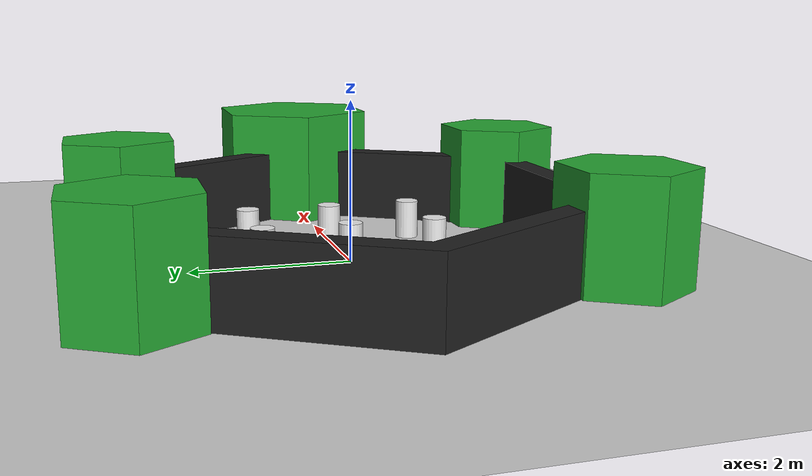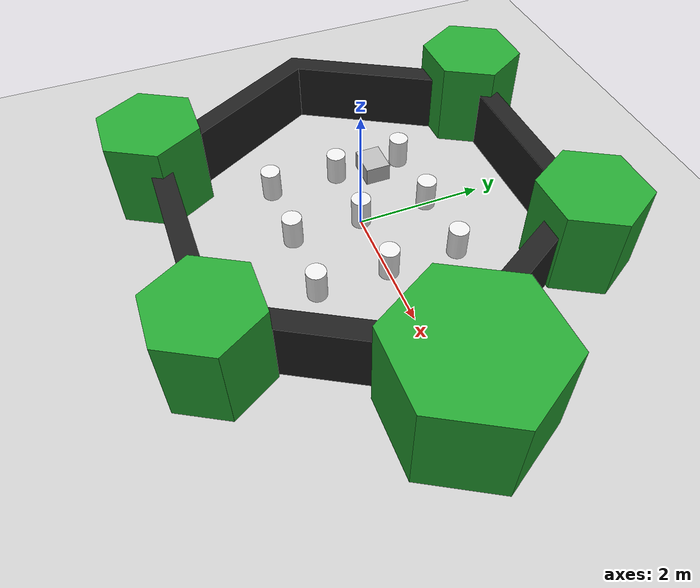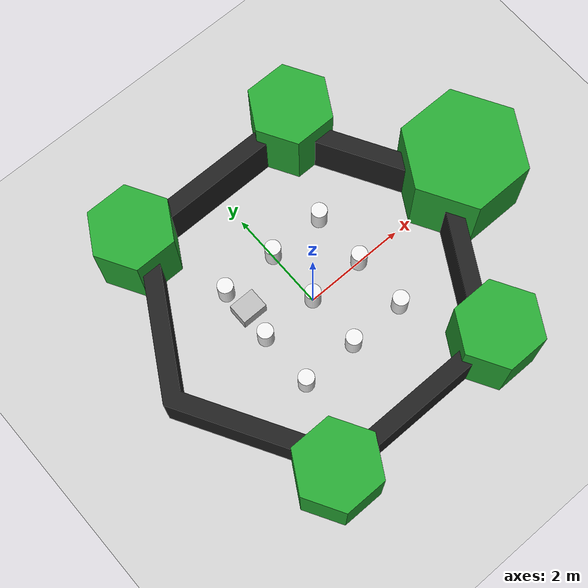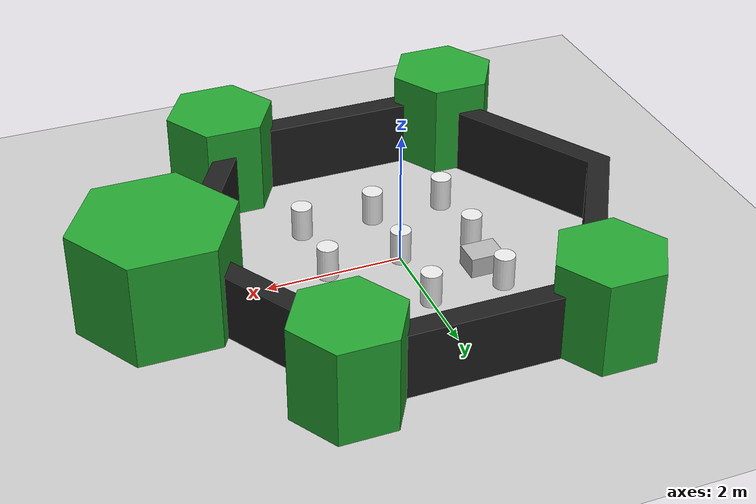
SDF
<sdf version="1.6">
 <world name="default">
  <include><uri>model://ground_plane</uri></include>
  <include><uri>model://sun</uri></include>
  <scene><shadows>false</shadows></scene>
  <physics type="ode">
   <real_time_update_rate>1000.0</real_time_update_rate>
   <max_step_size>0.001</max_step_size>
   <real_time_factor>1</real_time_factor>
   <ode>
    <solver>
     <type>quick</type>
     <iters>150</iters>
     <precon_iters>0</precon_iters>
     <sor>1.400000</sor>
     <use_dynamic_moi_rescaling>1</use_dynamic_moi_rescaling>
    </solver>
    <constraints>
     <cfm>0.00001</cfm>
     <erp>0.2</erp>
     <contact_max_correcting_vel>2000.000000</contact_max_correcting_vel>
     <contact_surface_layer>0.01000</contact_surface_layer>
    </constraints>
   </ode>
  </physics>
  <model name="turtlebot3_world">
   <static>1</static>
   <include><uri>model://turtlebot3_world</uri></include>
  </model>
  <model name="cardboard_box">
   <pose>-1.0 0.6 0.15 0 -0 0</pose>
   <link name="link">
    <inertial>
     <mass>20</mass>
     <inertia>
      <ixx>0.0416667</ixx>
      <ixy>0</ixy>
      <ixz>0</ixz>
      <iyy>0.0566667</iyy>
      <iyz>0</iyz>
      <izz>0.0683333</izz>
     </inertia>
    </inertial>
    <collision name="collision">
     <geometry><box><size>0.5 0.4 0.3</size></box></geometry>
     <surface>
      <friction><ode><mu>1</mu><mu2>1</mu2></ode></friction>
      <contact><ode><kp>1e+07</kp><kd>1</kd><min_depth>0.001</min_depth><max_vel>0.1</max_vel></ode></contact>
     </surface>
    </collision>
    <visual name="visual">
     <pose>0 0 -0.15 0 -0 0</pose>
     <geometry>
      <mesh><uri>model://cardboard_box/meshes/cardboard_box.dae</uri><scale>1.25932 1.00745 0.755591</scale></mesh>
     </geometry>
    </visual>
   </link>
  </model>
 </world>
</sdf>

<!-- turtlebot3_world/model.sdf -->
<sdf version='1.5'>
    <!-- Draw Circle -->
    <model name='ros_symbol'>
      <static>1</static>
      <link name='symbol'>
        <collision name='one_one'>
          <pose>-1.1 -1.1 0.25 0 0 0</pose>
          <geometry>
            <cylinder>
              <radius>0.15</radius>
              <length>0.5</length>
            </cylinder>
          </geometry>
          <max_contacts>10</max_contacts>
          <surface>
            <bounce/>
            <friction>
              <ode/>
            </friction>
            <contact>
              <ode/>
            </contact>
          </surface>
        </collision>

        <visual name='one_one'>
          <pose>-1.1 -1.1 0.25 0 0 0</pose>
          <geometry>
            <cylinder>
              <radius>0.15</radius>
              <length>0.5</length>
            </cylinder>
          </geometry>
          <material>
            <script>
              <uri>file://media/materials/scripts/gazebo.material</uri>
              <name>Gazebo/White</name>
            </script>
          </material>
        </visual>

        <collision name='one_two'>
          <pose>-1.1 0 0.25 0 0 0</pose>
          <geometry>
            <cylinder>
              <radius>0.15</radius>
              <length>0.5</length>
            </cylinder>
          </geometry>
          <max_contacts>10</max_contacts>
          <surface>
            <bounce/>
            <friction>
              <ode/>
            </friction>
            <contact>
              <ode/>
            </contact>
          </surface>
        </collision>

        <visual name='one_two'>
          <pose>-1.1 0 0.25 0 0 0</pose>
          <geometry>
            <cylinder>
              <radius>0.15</radius>
              <length>0.5</length>
            </cylinder>
          </geometry>
          <material>
            <script>
              <uri>file://media/materials/scripts/gazebo.material</uri>
              <name>Gazebo/White</name>
            </script>
          </material>
        </visual>

        <collision name='one_three'>
          <pose>-1.1 1.1 0.25 0 0 0</pose>
          <geometry>
            <cylinder>
              <radius>0.15</radius>
              <length>0.5</length>
            </cylinder>
          </geometry>
          <max_contacts>10</max_contacts>
          <surface>
            <bounce/>
            <friction>
              <ode/>
            </friction>
            <contact>
              <ode/>
            </contact>
          </surface>
        </collision>

        <visual name='one_three'>
          <pose>-1.1 1.1 0.25 0 0 0</pose>
          <geometry>
            <cylinder>
              <radius>0.15</radius>
              <length>0.5</length>
            </cylinder>
          </geometry>
          <material>
            <script>
              <uri>file://media/materials/scripts/gazebo.material</uri>
              <name>Gazebo/White</name>
            </script>
          </material>
        </visual>

        <collision name='two_one'>
          <pose>0 -1.1 0.25 0 0 0</pose>
          <geometry>
            <cylinder>
              <radius>0.15</radius>
              <length>0.5</length>
            </cylinder>
          </geometry>
          <max_contacts>10</max_contacts>
          <surface>
            <bounce/>
            <friction>
              <ode/>
            </friction>
            <contact>
              <ode/>
            </contact>
          </surface>
        </collision>

        <visual name='two_one'>
          <pose>0 -1.1 0.25 0 0 0</pose>
          <geometry>
            <cylinder>
              <radius>0.15</radius>
              <length>0.5</length>
            </cylinder>
          </geometry>
          <material>
            <script>
              <uri>file://media/materials/scripts/gazebo.material</uri>
              <name>Gazebo/White</name>
            </script>
          </material>
        </visual>

        <collision name='two_two'>
          <pose>0 0 0.25 0 0 0</pose>
          <geometry>
            <cylinder>
              <radius>0.15</radius>
              <length>0.5</length>
            </cylinder>
          </geometry>
          <max_contacts>10</max_contacts>
          <surface>
            <bounce/>
            <friction>
              <ode/>
            </friction>
            <contact>
              <ode/>
            </contact>
          </surface>
        </collision>

        <visual name='two_two'>
          <pose>0 0 0.25 0 0 0</pose>
          <geometry>
            <cylinder>
              <radius>0.15</radius>
              <length>0.5</length>
            </cylinder>
          </geometry>
          <material>
            <script>
              <uri>file://media/materials/scripts/gazebo.material</uri>
              <name>Gazebo/White</name>
            </script>
          </material>
        </visual>

        <collision name='two_three'>
          <pose>0 1.1 0.25 0 0 0</pose>
          <geometry>
            <cylinder>
              <radius>0.15</radius>
              <length>0.5</length>
            </cylinder>
          </geometry>
          <max_contacts>10</max_contacts>
          <surface>
            <bounce/>
            <friction>
              <ode/>
            </friction>
            <contact>
              <ode/>
            </contact>
          </surface>
        </collision>

        <visual name='two_three'>
          <pose>0 1.1 0.25 0 0 0</pose>
          <geometry>
            <cylinder>
              <radius>0.15</radius>
              <length>0.5</length>
            </cylinder>
          </geometry>
          <material>
            <script>
              <uri>file://media/materials/scripts/gazebo.material</uri>
              <name>Gazebo/White</name>
            </script>
          </material>
        </visual>

        <collision name='three_one'>
          <pose>1.1 -1.1 0.25 0 0 0</pose>
          <geometry>
            <cylinder>
              <radius>0.15</radius>
              <length>0.5</length>
            </cylinder>
          </geometry>
          <max_contacts>10</max_contacts>
          <surface>
            <bounce/>
            <friction>
              <ode/>
            </friction>
            <contact>
              <ode/>
            </contact>
          </surface>
        </collision>

        <visual name='three_one'>
          <pose>1.1 -1.1 0.25 0 0 0</pose>
          <geometry>
            <cylinder>
              <radius>0.15</radius>
              <length>0.5</length>
            </cylinder>
          </geometry>
          <material>
            <script>
              <uri>file://media/materials/scripts/gazebo.material</uri>
              <name>Gazebo/White</name>
            </script>
          </material>
        </visual>

        <collision name='three_two'>
          <pose>1.1 0 0.25 0 0 0</pose>
          <geometry>
            <cylinder>
              <radius>0.15</radius>
              <length>0.5</length>
            </cylinder>
          </geometry>
          <max_contacts>10</max_contacts>
          <surface>
            <bounce/>
            <friction>
              <ode/>
            </friction>
            <contact>
              <ode/>
            </contact>
          </surface>
        </collision>

        <visual name='three_two'>
          <pose>1.1 0 0.25 0 0 0</pose>
          <geometry>
            <cylinder>
              <radius>0.15</radius>
              <length>0.5</length>
            </cylinder>
          </geometry>
          <material>
            <script>
              <uri>file://media/materials/scripts/gazebo.material</uri>
              <name>Gazebo/White</name>
            </script>
          </material>
        </visual>

        <collision name='three_three'>
          <pose>1.1 1.1 0.25 0 0 0</pose>
          <geometry>
            <cylinder>
              <radius>0.15</radius>
              <length>0.5</length>
            </cylinder>
          </geometry>
          <max_contacts>10</max_contacts>
          <surface>
            <bounce/>
            <friction>
              <ode/>
            </friction>
            <contact>
              <ode/>
            </contact>
          </surface>
        </collision>

        <visual name='three_three'>
          <pose>1.1 1.1 0.25 0 0 0</pose>
          <geometry>
            <cylinder>
              <radius>0.15</radius>
              <length>0.5</length>
            </cylinder>
          </geometry>
          <material>
            <script>
              <uri>file://media/materials/scripts/gazebo.material</uri>
              <name>Gazebo/White</name>
            </script>
          </material>
        </visual>

        <!-- Draw Hexagon -->
        <collision name='head'>
          <pose>3.5 0 -0.5 0 0 0</pose>
          <geometry>
            <mesh>
              <uri>model://turtlebot3_world/meshes/hexagon.dae</uri>
              <scale>0.8 0.8 0.8</scale>
            </mesh>
          </geometry>
          <max_contacts>10</max_contacts>
          <surface>
            <bounce/>
            <friction>
              <ode/>
            </friction>
            <contact>
              <ode/>
            </contact>
          </surface>
        </collision>

        <visual name='head'>
          <pose>3.5 0 -0.5 0 0 0</pose>
          <geometry>
            <mesh>
              <uri>model://turtlebot3_world/meshes/hexagon.dae</uri>
              <scale>0.8 0.8 0.8</scale>
            </mesh>
          </geometry>
          <material>
            <script>
              <uri>file://media/materials/scripts/gazebo.material</uri>
              <name>Gazebo/Green</name>
            </script>
          </material>
        </visual>

        <collision name='left_hand'>
          <pose>1.8 2.7 0 0 0 0</pose>
          <geometry>
            <mesh>
              <uri>model://turtlebot3_world/meshes/hexagon.dae</uri>
              <scale>0.55 0.55 0.55</scale>
            </mesh>
          </geometry>
          <max_contacts>10</max_contacts>
          <surface>
            <bounce/>
            <friction>
              <ode/>
            </friction>
            <contact>
              <ode/>
            </contact>
          </surface>
        </collision>

        <visual name='left_hand'>
          <pose>1.8 2.7 0 0 0 0</pose>
          <geometry>
            <mesh>
              <uri>model://turtlebot3_world/meshes/hexagon.dae</uri>
              <scale>0.55 0.55 0.55</scale>
            </mesh>
          </geometry>
          <material>
            <script>
              <uri>file://media/materials/scripts/gazebo.material</uri>
              <name>Gazebo/Green</name>
            </script>
          </material>
        </visual>

        <collision name='right_hand'>
          <pose>1.8 -2.7 0 0 0 0</pose>
          <geometry>
            <mesh>
              <uri>model://turtlebot3_world/meshes/hexagon.dae</uri>
              <scale>0.55 0.55 0.55</scale>
            </mesh>
          </geometry>
          <max_contacts>10</max_contacts>
          <surface>
            <bounce/>
            <friction>
              <ode/>
            </friction>
            <contact>
              <ode/>
            </contact>
          </surface>
        </collision>

        <visual name='right_hand'>
          <pose>1.8 -2.7 0 0 0 0</pose>
          <geometry>
            <mesh>
              <uri>model://turtlebot3_world/meshes/hexagon.dae</uri>
              <scale>0.55 0.55 0.55</scale>
            </mesh>
          </geometry>
          <material>
            <script>
              <uri>file://media/materials/scripts/gazebo.material</uri>
              <name>Gazebo/Green</name>
            </script>
          </material>
        </visual>

        <collision name='left_foot'>
          <pose>-1.8 2.7 0 0 0 0</pose>
          <geometry>
            <mesh>
              <uri>model://turtlebot3_world/meshes/hexagon.dae</uri>
              <scale>0.55 0.55 0.55</scale>
            </mesh>
          </geometry>
          <max_contacts>10</max_contacts>
          <surface>
            <bounce/>
            <friction>
              <ode/>
            </friction>
            <contact>
              <ode/>
            </contact>
          </surface>
        </collision>

        <visual name='left_foot'>
          <pose>-1.8 2.7 0 0 0 0</pose>
          <geometry>
            <mesh>
              <uri>model://turtlebot3_world/meshes/hexagon.dae</uri>
              <scale>0.55 0.55 0.55</scale>
            </mesh>
          </geometry>
          <material>
            <script>
              <uri>file://media/materials/scripts/gazebo.material</uri>
              <name>Gazebo/Green</name>
            </script>
          </material>
        </visual>

        <collision name='right_foot'>
          <pose>-1.8 -2.7 0 0 0 0</pose>
          <geometry>
            <mesh>
              <uri>model://turtlebot3_world/meshes/hexagon.dae</uri>
              <scale>0.55 0.55 0.55</scale>
            </mesh>
          </geometry>
          <max_contacts>10</max_contacts>
          <surface>
            <bounce/>
            <friction>
              <ode/>
            </friction>
            <contact>
              <ode/>
            </contact>
          </surface>
        </collision>

        <visual name='right_foot'>
          <pose>-1.8 -2.7 0 0 0 0</pose>
          <geometry>
            <mesh>
              <uri>model://turtlebot3_world/meshes/hexagon.dae</uri>
              <scale>0.55 0.55 0.55</scale>
            </mesh>
          </geometry>
          <material>
            <script>
              <uri>file://media/materials/scripts/gazebo.material</uri>
              <name>Gazebo/Green</name>
            </script>
          </material>
        </visual>

        <!-- Draw Wall -->
        <collision name='body'>
        <pose>0 0 -0.3 0 0 -1.5708</pose>
        <geometry>
          <mesh>
            <uri>model://turtlebot3_world/meshes/wall.dae</uri>
            <scale>0.25 0.25 0.25</scale>
          </mesh>
        </geometry>
        <max_contacts>10</max_contacts>
        <surface>
          <bounce/>
          <friction>
            <ode/>
          </friction>
          <contact>
            <ode/>
          </contact>
        </surface>
      </collision>

      <visual name='body'>
        <pose>0 0 -0.3 0 0 -1.5708</pose>
        <geometry>
          <mesh>
            <uri>model://turtlebot3_world/meshes/wall.dae</uri>
            <scale>0.25 0.25 0.25</scale>
          </mesh>
        </geometry>
        <material>
          <script>
            <uri>file://media/materials/scripts/gazebo.material</uri>
            <name>Gazebo/FlatBlack</name>
          </script>
        </material>
      </visual>
    </link>
  </model>
</sdf>
